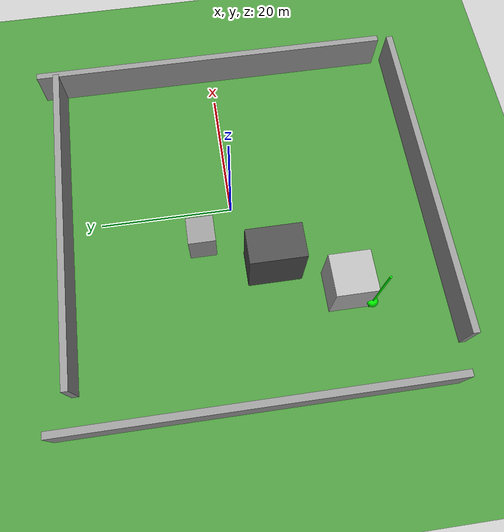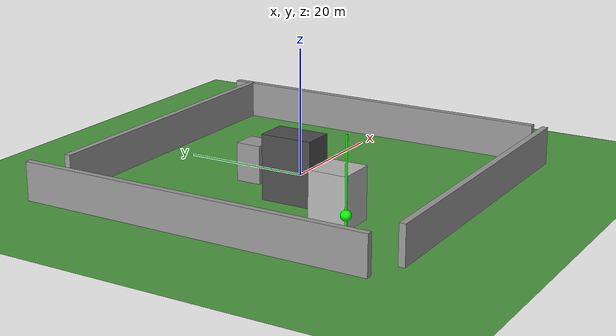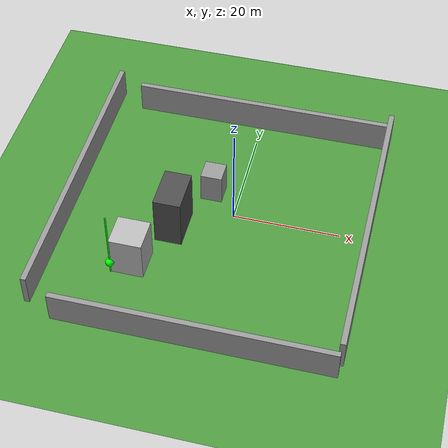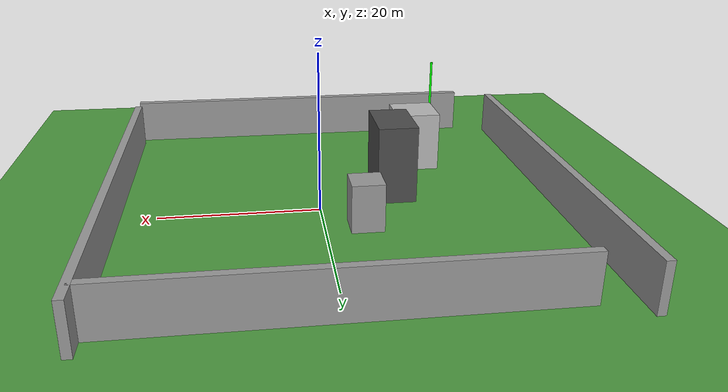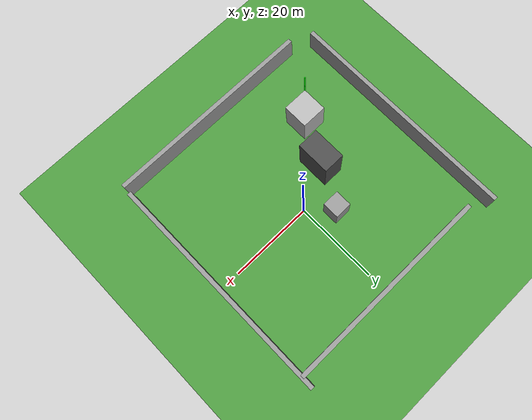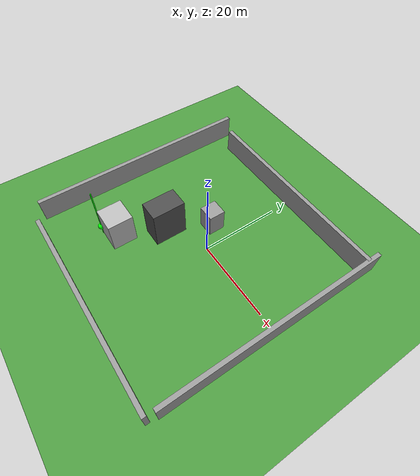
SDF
<?xml version="1.0"?>
<sdf version="1.6">
  <world name="ardupilot_city_world">

    <physics type="ode">
      <ode>
        <solver>
          <type>quick</type>
          <iters>50</iters>
          <sor>1.3</sor>
        </solver>
        <constraints>
          <cfm>0.0</cfm>
          <erp>0.2</erp>
          <contact_max_correcting_vel>100</contact_max_correcting_vel>
          <contact_surface_layer>0.001</contact_surface_layer>
        </constraints>
      </ode>
      <real_time_update_rate>250</real_time_update_rate>
      <max_step_size>0.004</max_step_size>
    </physics>

    <light name="sun" type="directional">
      <cast_shadows>false</cast_shadows>
      <pose>0 0 50 0 0 0</pose>
      <diffuse>0.8 0.8 0.8 1</diffuse>
      <specular>0.1 0.1 0.1 1</specular>
      <attenuation>
        <range>120</range>
        <constant>0.9</constant>
        <linear>0.01</linear>
        <quadratic>0.001</quadratic>
      </attenuation>
      <direction>-0.5 0.1 -0.9</direction>
    </light>

    <scene>
      <ambient>0.6 0.6 0.6 1</ambient>
      <background>0.75 0.8 0.85 1</background>
      <shadows>false</shadows>
      <grid>false</grid>
      <origin_visual>false</origin_visual>
    </scene>

    <model name="ground_plane">
      <static>true</static>
      <link name="link">
        <collision name="collision">
          <geometry>
            <plane>
              <normal>0 0 1</normal>
              <size>100 100</size>
            </plane>
          </geometry>
          <surface>
            <friction>
              <ode>
                <mu>100</mu>
                <mu2>50</mu2>
              </ode>
            </friction>
          </surface>
        </collision>
        <visual name="visual">
          <pose>0 0 0.01 0 0 0</pose>
          <geometry>
            <plane>
              <normal>0 0 1</normal>
              <size>100 100</size>
            </plane>
          </geometry>
          <material>
            <script>
              <uri>file://media/materials/scripts/gazebo.material</uri>
              <name>Gazebo/Grass</name>
            </script>
          </material>
        </visual>
      </link>
    </model>

    <!-- Simple boundary walls -->
    <model name="boundary_north">
      <static>true</static>
      <pose>0 25 3 0 0 0</pose>
      <link name="link">
        <collision name="collision"><geometry><box><size>50 1 6</size></box></geometry></collision>
        <visual name="visual">
          <geometry><box><size>50 1 6</size></box></geometry>
          <material><script><uri>file://media/materials/scripts/gazebo.material</uri><name>Gazebo/Grey</name></script></material>
        </visual>
      </link>
    </model>
    <model name="boundary_south">
      <static>true</static>
      <pose>0 -30 3 0 0 0</pose>
      <link name="link">
        <collision name="collision"><geometry><box><size>50 1 6</size></box></geometry></collision>
        <visual name="visual">
          <geometry><box><size>50 1 6</size></box></geometry>
          <material><script><uri>file://media/materials/scripts/gazebo.material</uri><name>Gazebo/Grey</name></script></material>
        </visual>
      </link>
    </model>
    <model name="boundary_east">
      <static>true</static>
      <pose>25 0 3 0 0 1.5708</pose>
      <link name="link">
        <collision name="collision"><geometry><box><size>56 1 6</size></box></geometry></collision>
        <visual name="visual">
          <geometry><box><size>56 1 6</size></box></geometry>
          <material><script><uri>file://media/materials/scripts/gazebo.material</uri><name>Gazebo/Grey</name></script></material>
        </visual>
      </link>
    </model>
    <model name="boundary_west">
      <static>true</static>
      <pose>-30 0 3 0 0 1.5708</pose>
      <link name="link">
        <collision name="collision"><geometry><box><size>56 1 6</size></box></geometry></collision>
        <visual name="visual">
          <geometry><box><size>56 1 6</size></box></geometry>
          <material><script><uri>file://media/materials/scripts/gazebo.material</uri><name>Gazebo/Grey</name></script></material>
        </visual>
      </link>
    </model>

    <!-- Only 3 buildings - simple obstacles -->
    <!-- Building 1: Between spawn and target -->
    <model name="building_1">
      <static>true</static>
      <pose>-15 -15 4 0 0 0</pose>
      <link name="link">
        <collision name="collision"><geometry><box><size>6 6 8</size></box></geometry></collision>
        <visual name="visual"><geometry><box><size>6 6 8</size></box></geometry>
          <material><script><uri>file://media/materials/scripts/gazebo.material</uri><name>Gazebo/Concrete</name></script></material>
        </visual>
      </link>
    </model>

    <!-- Building 2: Another obstacle -->
    <model name="building_2">
      <static>true</static>
      <pose>-10 -5 5 0 0 0</pose>
      <link name="link">
        <collision name="collision"><geometry><box><size>5 8 10</size></box></geometry></collision>
        <visual name="visual"><geometry><box><size>5 8 10</size></box></geometry>
          <material><script><uri>file://media/materials/scripts/gazebo.material</uri><name>Gazebo/DarkGrey</name></script></material>
        </visual>
      </link>
    </model>

    <!-- Building 3: Near target -->
    <model name="building_3">
      <static>true</static>
      <pose>-5 5 3 0 0 0</pose>
      <link name="link">
        <collision name="collision"><geometry><box><size>4 4 6</size></box></geometry></collision>
        <visual name="visual"><geometry><box><size>4 4 6</size></box></geometry>
          <material><script><uri>file://media/materials/scripts/gazebo.material</uri><name>Gazebo/Grey</name></script></material>
        </visual>
      </link>
    </model>

    <!-- Training target - VERY CLOSE to spawn point (-25,-25) -->
    <!-- New target at (-18, -18, 2.5) - about 10m from spawn -->
    <model name="training_goal">
      <static>true</static>
      <pose>-18 -18 2.5 0 0 0</pose>
      <link name="link">
        <collision name="collision">
          <geometry>
            <sphere><radius>0.8</radius></sphere>
          </geometry>
        </collision>
        <visual name="visual">
          <geometry>
            <sphere><radius>0.8</radius></sphere>
          </geometry>
          <material>
            <ambient>0 1 0 1</ambient>
            <diffuse>0 1 0 1</diffuse>
            <emissive>0 0.5 0 1</emissive>
          </material>
        </visual>
      </link>
    </model>

    <!-- Goal marker pole for better visibility -->
    <model name="goal_pole">
      <static>true</static>
      <pose>-18 -18 7 0 0 0</pose>
      <link name="link">
        <visual name="pole_visual">
          <geometry>
            <cylinder><radius>0.15</radius><length>14</length></cylinder>
          </geometry>
          <material>
            <ambient>0 1 0 1</ambient>
            <diffuse>0 1 0 1</diffuse>
          </material>
        </visual>
      </link>
    </model>

    <gui fullscreen="0">
      <camera name="user_camera">
        <pose>-35 -35 20 0 0.5 0.8</pose>
        <view_controller>orbit</view_controller>
      </camera>
    </gui>

  </world>
</sdf>
